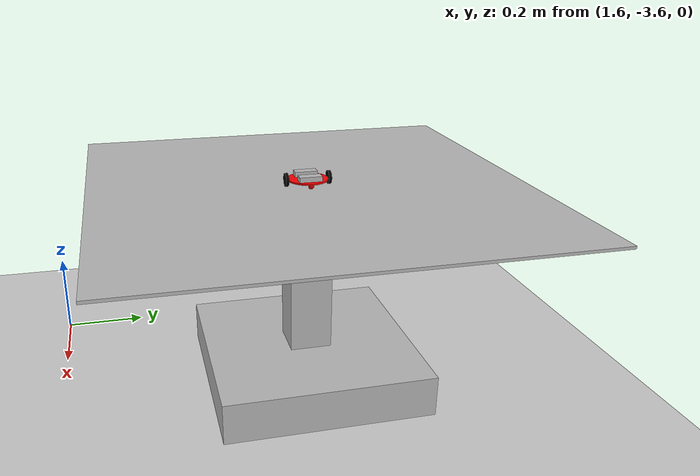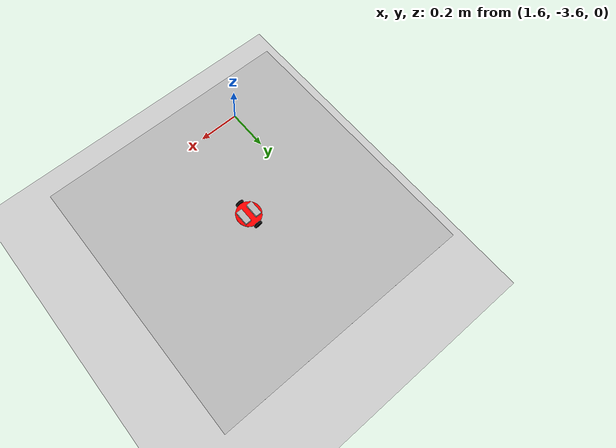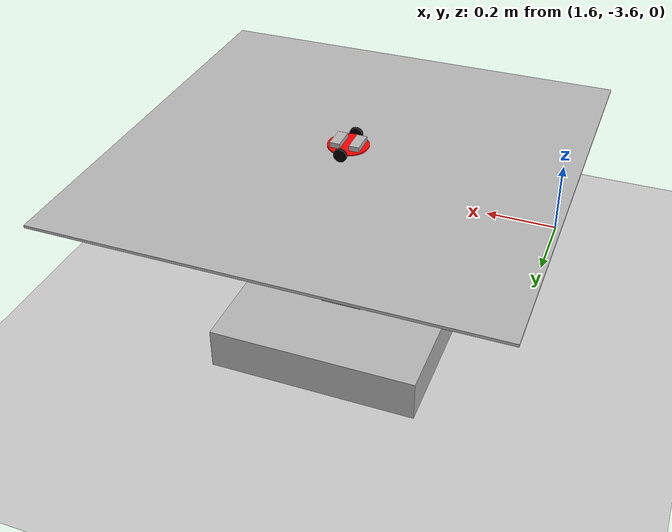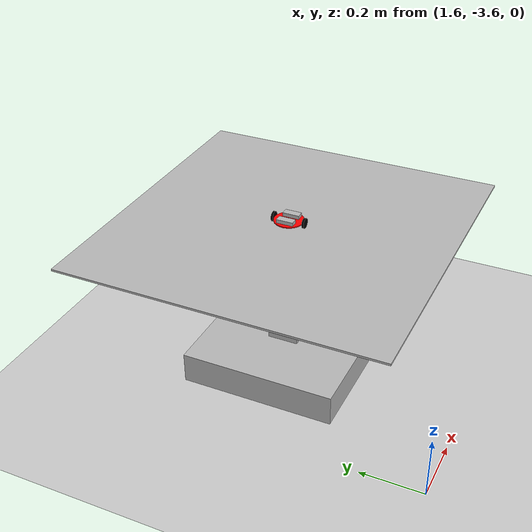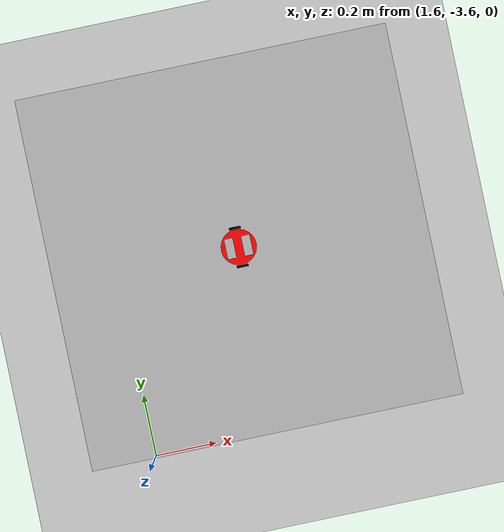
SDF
<sdf version="1.5">
 <world name="default">
  <light name="sun" type="directional">
   <pose>0 0 10 0 -0 0</pose>
   <diffuse>0.8 0.8 0.8 1</diffuse>
   <specular>0.2 0.2 0.2 1</specular>
   <attenuation>
    <range>1000</range>
    <constant>0.9</constant>
    <linear>0.01</linear>
    <quadratic>0.001</quadratic>
   </attenuation>
   <direction>-0.5 0.1 -0.9</direction>
  </light>
  <model name="ground_plane">
   <static>1</static>
   <link name="link">
    <collision name="collision">
     <geometry><plane><normal>0 0 1</normal><size>100 100</size></plane></geometry>
     <surface><friction><ode><mu>100</mu><mu2>50</mu2></ode></friction></surface>
    </collision>
    <visual name="visual">
     <cast_shadows>0</cast_shadows>
     <geometry><plane><normal>0 0 1</normal><size>100 100</size></plane></geometry>
     <material>
      <script><uri>file://media/materials/scripts/gazebo.material</uri><name>Gazebo/Grey</name></script>
     </material>
    </visual>
   </link>
  </model>
  <physics name="default_physics" default="0" type="ode">
   <max_step_size>0.001</max_step_size>
   <real_time_factor>1</real_time_factor>
   <real_time_update_rate>1000</real_time_update_rate>
   <gravity>0 0 -9.8</gravity>
   <magnetic_field>5.5645e-06 2.28758e-05 -4.23884e-05</magnetic_field>
  </physics>
  <scene><ambient>0.4 0.4 0.4 1</ambient><background>0.7 0.7 0.7 1</background><shadows>1</shadows></scene>
  <spherical_coordinates>
   <surface_model>EARTH_WGS84</surface_model>
   <latitude_deg>0</latitude_deg>
   <longitude_deg>0</longitude_deg>
   <elevation>0</elevation>
   <heading_deg>0</heading_deg>
  </spherical_coordinates>
  <model name="1DPlane">
   <static>0</static>
   <link name="base">
    <pose>0 0 0.05 0 -0 0</pose>
    <collision name="collision_base"><geometry><box><size>0.5 0.5 0.1</size></box></geometry></collision>
    <collision name="collision_support">
     <pose>0 0 0.25 0 -0 0</pose>
     <geometry><box><size>0.1 0.1 0.3</size></box></geometry>
    </collision>
    <visual name="visual_base"><geometry><box><size>0.5 0.5 0.1</size></box></geometry></visual>
    <visual name="visual_support">
     <pose>0 0 0.2 0 -0 0</pose>
     <geometry><box><size>0.1 0.1 0.4</size></box></geometry>
    </visual>
    <inertial>
     <inertia><ixx>1</ixx><ixy>0</ixy><ixz>0</ixz><iyy>1</iyy><iyz>0</iyz><izz>1</izz></inertia>
     <mass>1</mass>
    </inertial>
   </link>
   <link name="plane">
    <pose>0 0 0.5 0 -0 0</pose>
    <collision name="collision_plane"><geometry><box><size>1 1 0.01</size></box></geometry></collision>
    <visual name="visual_plane"><geometry><box><size>1 1 0.00635</size></box></geometry></visual>
    <inertial>
     <inertia><ixx>1</ixx><ixy>0</ixy><ixz>0</ixz><iyy>1</iyy><iyz>0</iyz><izz>1</izz></inertia>
     <mass>1</mass>
    </inertial>
   </link>
   <joint name="main_joint" type="revolute">
    <child>plane</child>
    <parent>base</parent>
    <axis>
     <xyz>0 1 0</xyz>
     <dynamics>
      <damping>0.1</damping>
      <spring_reference>0</spring_reference>
      <spring_stiffness>0</spring_stiffness>
     </dynamics>
     <limit><lower>-0.785398</lower><upper>0.785398</upper></limit>
     <use_parent_model_frame>1</use_parent_model_frame>
    </axis>
   </joint>
   <pose>2 -3 0 0 -0 0</pose>
  </model>
  <model name="Diffydrive_rob1">
   <static>0</static>
   <link name="chassis">
    <pose>0 0 0.51774 0 -0 0</pose>
    <inertial>
     <pose>0.01 0 0 0 -0 0</pose>
     <mass>0.09</mass>
     <inertia>
      <ixx>5.0645e-05</ixx>
      <ixy>0</ixy>
      <ixz>0</ixz>
      <iyy>5.0645e-05</iyy>
      <iyz>0</iyz>
      <izz>9.9557e-05</izz>
     </inertia>
    </inertial>
    <collision name="collision">
     <geometry><cylinder><radius>0.04713</radius><length>0.0034</length></cylinder></geometry>
    </collision>
    <visual name="visual">
     <geometry><cylinder><radius>0.04713</radius><length>0.0034</length></cylinder></geometry>
     <material>
      <ambient>0.7 0.7 0.7 1</ambient>
      <diffuse>1 0 0 1</diffuse>
      <specular>0.1 0.1 0.1 1</specular>
      <emissive>0 0 0 0</emissive>
     </material>
    </visual>
    <visual name="box_1">
     <pose>0.0225 0 0.0077 0 -0 0</pose>
     <geometry><box><size>0.023 0.053 0.012</size></box></geometry>
    </visual>
    <visual name="box_2">
     <pose>-0.0225 0 0.0077 0 -0 0</pose>
     <geometry><box><size>0.023 0.053 0.012</size></box></geometry>
    </visual>
    <collision name="caster_collision">
     <pose>0.034 0 -0.00807 0 -0 0</pose>
     <geometry><sphere><radius>0.00637</radius></sphere></geometry>
     <surface><friction><ode><mu>0.2</mu><mu2>0.2</mu2><slip1>2</slip1><slip2>2</slip2></ode></friction></surface>
    </collision>
    <visual name="caster_visual">
     <pose>0.034 0 -0.00807 0 -0 0</pose>
     <geometry><sphere><radius>0.00637</radius></sphere></geometry>
     <material>
      <ambient>0.8 0.8 0 0.8</ambient>
      <diffuse>0.8 0 0 1</diffuse>
      <specular>0.1 0.1 0.1 1</specular>
      <emissive>0 0 0 0</emissive>
     </material>
    </visual>
   </link>
   <link name="left_wheel">
    <pose>0 0.05043 0.5189 0 1.5707 1.5707</pose>
    <collision name="collision">
     <geometry><cylinder><radius>0.0156</radius><length>0.0066</length></cylinder></geometry>
     <surface><friction><ode><mu>0.2</mu><mu2>0.2</mu2><slip1>2</slip1><slip2>2</slip2></ode></friction></surface>
    </collision>
    <visual name="visual">
     <geometry><cylinder><radius>0.0156</radius><length>0.0066</length></cylinder></geometry>
     <material>
      <ambient>0 0 0 1</ambient>
      <diffuse>0 0 0 1</diffuse>
      <specular>0.1 0.1 0.1 1</specular>
      <emissive>0 0 0 0</emissive>
     </material>
    </visual>
    <inertial>
     <inertia><ixx>1</ixx><ixy>0</ixy><ixz>0</ixz><iyy>1</iyy><iyz>0</iyz><izz>1</izz></inertia>
     <mass>1</mass>
    </inertial>
   </link>
   <link name="right_wheel">
    <pose>0 -0.05043 0.5189 0 1.5707 1.5707</pose>
    <collision name="collision">
     <geometry><cylinder><radius>0.0156</radius><length>0.0066</length></cylinder></geometry>
     <surface><friction><ode><mu>0.2</mu><mu2>0.2</mu2><slip1>2</slip1><slip2>2</slip2></ode></friction></surface>
    </collision>
    <visual name="visual">
     <geometry><cylinder><radius>0.0156</radius><length>0.0066</length></cylinder></geometry>
     <material>
      <ambient>0 0 0 1</ambient>
      <diffuse>0 0 0 1</diffuse>
      <specular>0.1 0.1 0.1 1</specular>
      <emissive>0 0 0 0</emissive>
     </material>
    </visual>
    <inertial>
     <inertia><ixx>1</ixx><ixy>0</ixy><ixz>0</ixz><iyy>1</iyy><iyz>0</iyz><izz>1</izz></inertia>
     <mass>1</mass>
    </inertial>
   </link>
   <joint name="left_wheel_joint" type="revolute">
    <child>left_wheel</child>
    <parent>chassis</parent>
    <axis>
     <xyz>0 1 0</xyz>
     <use_parent_model_frame>1</use_parent_model_frame>
     <limit><lower>-1e+16</lower><upper>1e+16</upper></limit>
     <dynamics><spring_reference>0</spring_reference><spring_stiffness>0</spring_stiffness></dynamics>
    </axis>
   </joint>
   <joint name="right_wheel_joint" type="revolute">
    <child>right_wheel</child>
    <parent>chassis</parent>
    <axis>
     <xyz>0 1 0</xyz>
     <use_parent_model_frame>1</use_parent_model_frame>
     <limit><lower>-1e+16</lower><upper>1e+16</upper></limit>
     <dynamics><spring_reference>0</spring_reference><spring_stiffness>0</spring_stiffness></dynamics>
    </axis>
   </joint>
   <pose>2 -3 0 0 -0 0</pose>
  </model>
 </world>
</sdf>
